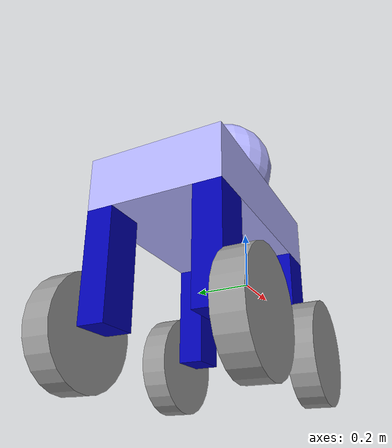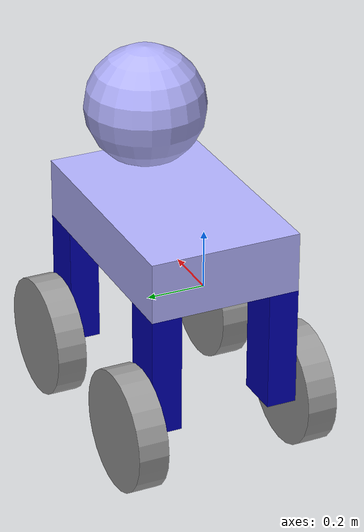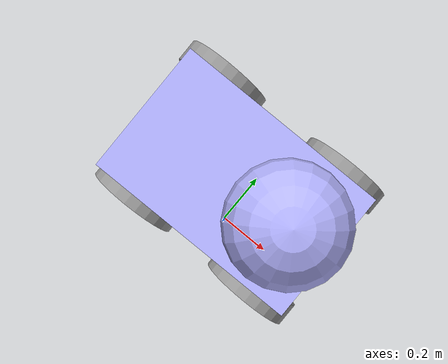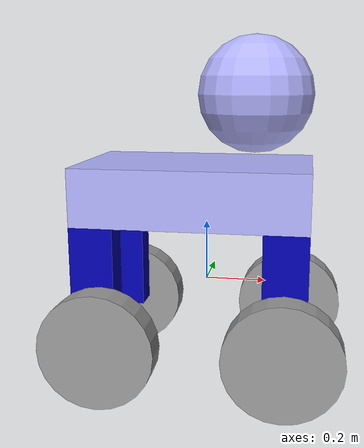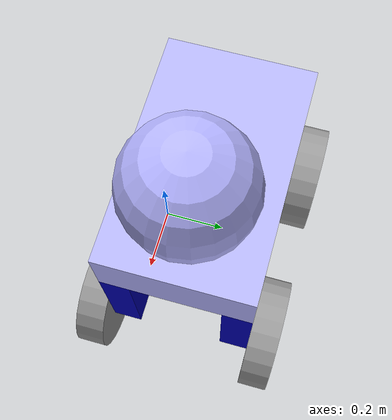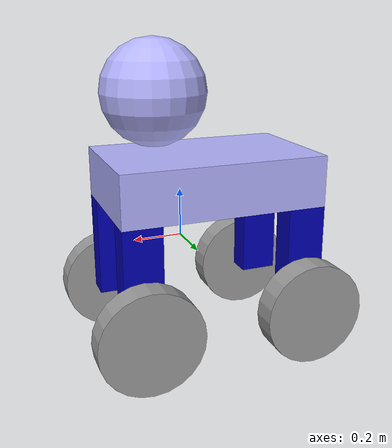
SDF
<?xml version='1.0'?>
<sdf version='1.6'>
  <model name='FourWheeledRobot'>
    <link name='link_4'>
      <pose frame=''>-0.345268 -0.160069 -0.216667 1.5707 -0 0</pose>
      <inertial>
        <mass>1</mass>
        <inertia>
          <ixx>0.145833</ixx>
          <ixy>0</ixy>
          <ixz>0</ixz>
          <iyy>0.145833</iyy>
          <iyz>0</iyz>
          <izz>0.125</izz>
        </inertia>
        <pose frame=''>0 0 0 0 -0 0</pose>
      </inertial>
      <self_collide>0</self_collide>
      <kinematic>0</kinematic>
      <visual name='visual'>
        <pose frame=''>0 0 0 0 -0 0</pose>
        <geometry>
          <cylinder>
            <radius>0.2</radius>
            <length>0.1</length>
          </cylinder>
        </geometry>
        <material>
          <lighting>1</lighting>
          <script>
            <uri>file://media/materials/scripts/gazebo.material</uri>
            <name>Gazebo/Grey</name>
          </script>
          <shader type='pixel'>
            <normal_map>__default__</normal_map>
          </shader>
          <ambient>0 0 0 1</ambient>
          <diffuse>0 0 0 1</diffuse>
          <specular>0 0 0 1</specular>
          <emissive>0 0 0 1</emissive>
        </material>
        <transparency>0</transparency>
        <cast_shadows>1</cast_shadows>
      </visual>
      <collision name='collision'>
        <laser_retro>0</laser_retro>
        <max_contacts>10</max_contacts>
        <pose frame=''>0 0 0 0 -0 0</pose>
        <geometry>
          <cylinder>
            <radius>0.2</radius>
            <length>0.1</length>
          </cylinder>
        </geometry>
        <surface>
          <friction>
            <ode>
              <mu>1</mu>
              <mu2>1</mu2>
              <fdir1>0 0 0</fdir1>
              <slip1>0</slip1>
              <slip2>0</slip2>
            </ode>
            <torsional>
              <coefficient>1</coefficient>
              <patch_radius>0</patch_radius>
              <surface_radius>0</surface_radius>
              <use_patch_radius>1</use_patch_radius>
              <ode>
                <slip>0</slip>
              </ode>
            </torsional>
          </friction>
          <bounce>
            <restitution_coefficient>0</restitution_coefficient>
            <threshold>1e+06</threshold>
          </bounce>
          <contact>
            <collide_without_contact>0</collide_without_contact>
            <collide_without_contact_bitmask>1</collide_without_contact_bitmask>
            <collide_bitmask>1</collide_bitmask>
            <ode>
              <soft_cfm>0</soft_cfm>
              <soft_erp>0.2</soft_erp>
              <kp>1e+13</kp>
              <kd>1</kd>
              <max_vel>0.01</max_vel>
              <min_depth>0</min_depth>
            </ode>
            <bullet>
              <split_impulse>1</split_impulse>
              <split_impulse_penetration_threshold>-0.01</split_impulse_penetration_threshold>
              <soft_cfm>0</soft_cfm>
              <soft_erp>0.2</soft_erp>
              <kp>1e+13</kp>
              <kd>1</kd>
            </bullet>
          </contact>
        </surface>
      </collision>
    </link>
    <link name='link_4_clone'>
      <pose frame=''>0.272232 -0.160069 -0.216668 1.5707 -0 0</pose>
      <inertial>
        <mass>1</mass>
        <inertia>
          <ixx>0.145833</ixx>
          <ixy>0</ixy>
          <ixz>0</ixz>
          <iyy>0.145833</iyy>
          <iyz>0</iyz>
          <izz>0.125</izz>
        </inertia>
        <pose frame=''>0 0 0 0 -0 0</pose>
      </inertial>
      <self_collide>0</self_collide>
      <kinematic>0</kinematic>
      <visual name='visual'>
        <pose frame=''>0 0 0 0 -0 0</pose>
        <geometry>
          <cylinder>
            <radius>0.2</radius>
            <length>0.1</length>
          </cylinder>
        </geometry>
        <material>
          <lighting>1</lighting>
          <script>
            <uri>file://media/materials/scripts/gazebo.material</uri>
            <name>Gazebo/Grey</name>
          </script>
          <shader type='pixel'>
            <normal_map>__default__</normal_map>
          </shader>
          <ambient>0 0 0 1</ambient>
          <diffuse>0 0 0 1</diffuse>
          <specular>0 0 0 1</specular>
          <emissive>0 0 0 1</emissive>
        </material>
        <transparency>0</transparency>
        <cast_shadows>1</cast_shadows>
      </visual>
      <collision name='collision'>
        <laser_retro>0</laser_retro>
        <max_contacts>10</max_contacts>
        <pose frame=''>0 0 0 0 -0 0</pose>
        <geometry>
          <cylinder>
            <radius>0.2</radius>
            <length>0.1</length>
          </cylinder>
        </geometry>
        <surface>
          <friction>
            <ode>
              <mu>1</mu>
              <mu2>1</mu2>
              <fdir1>0 0 0</fdir1>
              <slip1>0</slip1>
              <slip2>0</slip2>
            </ode>
            <torsional>
              <coefficient>1</coefficient>
              <patch_radius>0</patch_radius>
              <surface_radius>0</surface_radius>
              <use_patch_radius>1</use_patch_radius>
              <ode>
                <slip>0</slip>
              </ode>
            </torsional>
          </friction>
          <bounce>
            <restitution_coefficient>0</restitution_coefficient>
            <threshold>1e+06</threshold>
          </bounce>
          <contact>
            <collide_without_contact>0</collide_without_contact>
            <collide_without_contact_bitmask>1</collide_without_contact_bitmask>
            <collide_bitmask>1</collide_bitmask>
            <ode>
              <soft_cfm>0</soft_cfm>
              <soft_erp>0.2</soft_erp>
              <kp>1e+13</kp>
              <kd>1</kd>
              <max_vel>0.01</max_vel>
              <min_depth>0</min_depth>
            </ode>
            <bullet>
              <split_impulse>1</split_impulse>
              <split_impulse_penetration_threshold>-0.01</split_impulse_penetration_threshold>
              <soft_cfm>0</soft_cfm>
              <soft_erp>0.2</soft_erp>
              <kp>1e+13</kp>
              <kd>1</kd>
            </bullet>
          </contact>
        </surface>
      </collision>
    </link>
    <link name='link_4_clone_0'>
      <pose frame=''>-0.377768 0.43997 -0.216667 1.5707 -0 0</pose>
      <inertial>
        <mass>1</mass>
        <inertia>
          <ixx>0.145833</ixx>
          <ixy>0</ixy>
          <ixz>0</ixz>
          <iyy>0.145833</iyy>
          <iyz>0</iyz>
          <izz>0.125</izz>
        </inertia>
        <pose frame=''>0 0 0 0 -0 0</pose>
      </inertial>
      <self_collide>0</self_collide>
      <kinematic>0</kinematic>
      <visual name='visual'>
        <pose frame=''>0 0 0 0 -0 0</pose>
        <geometry>
          <cylinder>
            <radius>0.2</radius>
            <length>0.1</length>
          </cylinder>
        </geometry>
        <material>
          <lighting>1</lighting>
          <script>
            <uri>file://media/materials/scripts/gazebo.material</uri>
            <name>Gazebo/Grey</name>
          </script>
          <shader type='pixel'>
            <normal_map>__default__</normal_map>
          </shader>
          <ambient>0 0 0 1</ambient>
          <diffuse>0 0 0 1</diffuse>
          <specular>0 0 0 1</specular>
          <emissive>0 0 0 1</emissive>
        </material>
        <transparency>0</transparency>
        <cast_shadows>1</cast_shadows>
      </visual>
      <collision name='collision'>
        <laser_retro>0</laser_retro>
        <max_contacts>10</max_contacts>
        <pose frame=''>0 0 0 0 -0 0</pose>
        <geometry>
          <cylinder>
            <radius>0.2</radius>
            <length>0.1</length>
          </cylinder>
        </geometry>
        <surface>
          <friction>
            <ode>
              <mu>1</mu>
              <mu2>1</mu2>
              <fdir1>0 0 0</fdir1>
              <slip1>0</slip1>
              <slip2>0</slip2>
            </ode>
            <torsional>
              <coefficient>1</coefficient>
              <patch_radius>0</patch_radius>
              <surface_radius>0</surface_radius>
              <use_patch_radius>1</use_patch_radius>
              <ode>
                <slip>0</slip>
              </ode>
            </torsional>
          </friction>
          <bounce>
            <restitution_coefficient>0</restitution_coefficient>
            <threshold>1e+06</threshold>
          </bounce>
          <contact>
            <collide_without_contact>0</collide_without_contact>
            <collide_without_contact_bitmask>1</collide_without_contact_bitmask>
            <collide_bitmask>1</collide_bitmask>
            <ode>
              <soft_cfm>0</soft_cfm>
              <soft_erp>0.2</soft_erp>
              <kp>1e+13</kp>
              <kd>1</kd>
              <max_vel>0.01</max_vel>
              <min_depth>0</min_depth>
            </ode>
            <bullet>
              <split_impulse>1</split_impulse>
              <split_impulse_penetration_threshold>-0.01</split_impulse_penetration_threshold>
              <soft_cfm>0</soft_cfm>
              <soft_erp>0.2</soft_erp>
              <kp>1e+13</kp>
              <kd>1</kd>
            </bullet>
          </contact>
        </surface>
      </collision>
    </link>
    <link name='link_4_clone_1'>
      <pose frame=''>0.272232 0.43997 -0.216667 1.5707 -0 0</pose>
      <inertial>
        <mass>1</mass>
        <inertia>
          <ixx>0.145833</ixx>
          <ixy>0</ixy>
          <ixz>0</ixz>
          <iyy>0.145833</iyy>
          <iyz>0</iyz>
          <izz>0.125</izz>
        </inertia>
        <pose frame=''>0 0 0 0 -0 0</pose>
      </inertial>
      <self_collide>0</self_collide>
      <kinematic>0</kinematic>
      <visual name='visual'>
        <pose frame=''>0 0 0 0 -0 0</pose>
        <geometry>
          <cylinder>
            <radius>0.2</radius>
            <length>0.1</length>
          </cylinder>
        </geometry>
        <material>
          <lighting>1</lighting>
          <script>
            <uri>file://media/materials/scripts/gazebo.material</uri>
            <name>Gazebo/Grey</name>
          </script>
          <shader type='pixel'>
            <normal_map>__default__</normal_map>
          </shader>
          <ambient>0 0 0 1</ambient>
          <diffuse>0 0 0 1</diffuse>
          <specular>0 0 0 1</specular>
          <emissive>0 0 0 1</emissive>
        </material>
        <transparency>0</transparency>
        <cast_shadows>1</cast_shadows>
      </visual>
      <collision name='collision'>
        <laser_retro>0</laser_retro>
        <max_contacts>10</max_contacts>
        <pose frame=''>0 0 0 0 -0 0</pose>
        <geometry>
          <cylinder>
            <radius>0.2</radius>
            <length>0.1</length>
          </cylinder>
        </geometry>
        <surface>
          <friction>
            <ode>
              <mu>1</mu>
              <mu2>1</mu2>
              <fdir1>0 0 0</fdir1>
              <slip1>0</slip1>
              <slip2>0</slip2>
            </ode>
            <torsional>
              <coefficient>1</coefficient>
              <patch_radius>0</patch_radius>
              <surface_radius>0</surface_radius>
              <use_patch_radius>1</use_patch_radius>
              <ode>
                <slip>0</slip>
              </ode>
            </torsional>
          </friction>
          <bounce>
            <restitution_coefficient>0</restitution_coefficient>
            <threshold>1e+06</threshold>
          </bounce>
          <contact>
            <collide_without_contact>0</collide_without_contact>
            <collide_without_contact_bitmask>1</collide_without_contact_bitmask>
            <collide_bitmask>1</collide_bitmask>
            <ode>
              <soft_cfm>0</soft_cfm>
              <soft_erp>0.2</soft_erp>
              <kp>1e+13</kp>
              <kd>1</kd>
              <max_vel>0.01</max_vel>
              <min_depth>0</min_depth>
            </ode>
            <bullet>
              <split_impulse>1</split_impulse>
              <split_impulse_penetration_threshold>-0.01</split_impulse_penetration_threshold>
              <soft_cfm>0</soft_cfm>
              <soft_erp>0.2</soft_erp>
              <kp>1e+13</kp>
              <kd>1</kd>
            </bullet>
          </contact>
        </surface>
      </collision>
    </link>
    <link name='link_5'>
      <pose frame=''>-0.377768 -0.060049 -0.016667 0 -0 0</pose>
      <inertial>
        <mass>1</mass>
        <inertia>
          <ixx>0.166667</ixx>
          <ixy>0</ixy>
          <ixz>0</ixz>
          <iyy>0.166667</iyy>
          <iyz>0</iyz>
          <izz>0.166667</izz>
        </inertia>
        <pose frame=''>0 0 0 0 -0 0</pose>
      </inertial>
      <self_collide>0</self_collide>
      <kinematic>0</kinematic>
      <visual name='visual'>
        <pose frame=''>0 0 0 0 -0 0</pose>
        <geometry>
          <box>
            <size>0.15 0.1 0.4</size>
          </box>
        </geometry>
        <material>
          <lighting>1</lighting>
          <script>
            <uri>file://media/materials/scripts/gazebo.material</uri>
            <name>Gazebo/Grey</name>
          </script>
          <shader type='pixel'>
            <normal_map>__default__</normal_map>
          </shader>
          <ambient>0 0 1 1</ambient>
          <diffuse>0 0 0.7 1</diffuse>
          <specular>0 0 0.01 1</specular>
          <emissive>0 0 0 1</emissive>
        </material>
        <transparency>0</transparency>
        <cast_shadows>1</cast_shadows>
      </visual>
      <collision name='collision'>
        <laser_retro>0</laser_retro>
        <max_contacts>10</max_contacts>
        <pose frame=''>0 0 0 0 -0 0</pose>
        <geometry>
          <box>
            <size>0.15 0.1 0.4</size>
          </box>
        </geometry>
        <surface>
          <friction>
            <ode>
              <mu>1</mu>
              <mu2>1</mu2>
              <fdir1>0 0 0</fdir1>
              <slip1>0</slip1>
              <slip2>0</slip2>
            </ode>
            <torsional>
              <coefficient>1</coefficient>
              <patch_radius>0</patch_radius>
              <surface_radius>0</surface_radius>
              <use_patch_radius>1</use_patch_radius>
              <ode>
                <slip>0</slip>
              </ode>
            </torsional>
          </friction>
          <bounce>
            <restitution_coefficient>0</restitution_coefficient>
            <threshold>1e+06</threshold>
          </bounce>
          <contact>
            <collide_without_contact>0</collide_without_contact>
            <collide_without_contact_bitmask>1</collide_without_contact_bitmask>
            <collide_bitmask>1</collide_bitmask>
            <ode>
              <soft_cfm>0</soft_cfm>
              <soft_erp>0.2</soft_erp>
              <kp>1e+13</kp>
              <kd>1</kd>
              <max_vel>0.01</max_vel>
              <min_depth>0</min_depth>
            </ode>
            <bullet>
              <split_impulse>1</split_impulse>
              <split_impulse_penetration_threshold>-0.01</split_impulse_penetration_threshold>
              <soft_cfm>0</soft_cfm>
              <soft_erp>0.2</soft_erp>
              <kp>1e+13</kp>
              <kd>1</kd>
            </bullet>
          </contact>
        </surface>
      </collision>
    </link>
    <link name='link_5_clone'>
      <pose frame=''>-0.377768 0.339951 -0.016667 0 -0 0</pose>
      <inertial>
        <mass>1</mass>
        <inertia>
          <ixx>0.166667</ixx>
          <ixy>0</ixy>
          <ixz>0</ixz>
          <iyy>0.166667</iyy>
          <iyz>0</iyz>
          <izz>0.166667</izz>
        </inertia>
        <pose frame=''>0 0 0 0 -0 0</pose>
      </inertial>
      <self_collide>0</self_collide>
      <kinematic>0</kinematic>
      <visual name='visual'>
        <pose frame=''>0 0 0 0 -0 0</pose>
        <geometry>
          <box>
            <size>0.15 0.1 0.4</size>
          </box>
        </geometry>
        <material>
          <lighting>1</lighting>
          <script>
            <uri>file://media/materials/scripts/gazebo.material</uri>
            <name>Gazebo/Grey</name>
          </script>
          <shader type='pixel'>
            <normal_map>__default__</normal_map>
          </shader>
          <ambient>0 0 1 1</ambient>
          <diffuse>0 0 0.7 1</diffuse>
          <specular>0 0 0.01 1</specular>
          <emissive>0 0 0 1</emissive>
        </material>
        <transparency>0</transparency>
        <cast_shadows>1</cast_shadows>
      </visual>
      <collision name='collision'>
        <laser_retro>0</laser_retro>
        <max_contacts>10</max_contacts>
        <pose frame=''>0 0 0 0 -0 0</pose>
        <geometry>
          <box>
            <size>0.15 0.1 0.4</size>
          </box>
        </geometry>
        <surface>
          <friction>
            <ode>
              <mu>1</mu>
              <mu2>1</mu2>
              <fdir1>0 0 0</fdir1>
              <slip1>0</slip1>
              <slip2>0</slip2>
            </ode>
            <torsional>
              <coefficient>1</coefficient>
              <patch_radius>0</patch_radius>
              <surface_radius>0</surface_radius>
              <use_patch_radius>1</use_patch_radius>
              <ode>
                <slip>0</slip>
              </ode>
            </torsional>
          </friction>
          <bounce>
            <restitution_coefficient>0</restitution_coefficient>
            <threshold>1e+06</threshold>
          </bounce>
          <contact>
            <collide_without_contact>0</collide_without_contact>
            <collide_without_contact_bitmask>1</collide_without_contact_bitmask>
            <collide_bitmask>1</collide_bitmask>
            <ode>
              <soft_cfm>0</soft_cfm>
              <soft_erp>0.2</soft_erp>
              <kp>1e+13</kp>
              <kd>1</kd>
              <max_vel>0.01</max_vel>
              <min_depth>0</min_depth>
            </ode>
            <bullet>
              <split_impulse>1</split_impulse>
              <split_impulse_penetration_threshold>-0.01</split_impulse_penetration_threshold>
              <soft_cfm>0</soft_cfm>
              <soft_erp>0.2</soft_erp>
              <kp>1e+13</kp>
              <kd>1</kd>
            </bullet>
          </contact>
        </surface>
      </collision>
    </link>
    <link name='link_5_clone_0'>
      <pose frame=''>0.272232 -0.060049 -0.016667 0 -0 0</pose>
      <inertial>
        <mass>1</mass>
        <inertia>
          <ixx>0.166667</ixx>
          <ixy>0</ixy>
          <ixz>0</ixz>
          <iyy>0.166667</iyy>
          <iyz>0</iyz>
          <izz>0.166667</izz>
        </inertia>
        <pose frame=''>0 0 0 0 -0 0</pose>
      </inertial>
      <self_collide>0</self_collide>
      <kinematic>0</kinematic>
      <visual name='visual'>
        <pose frame=''>0 0 0 0 -0 0</pose>
        <geometry>
          <box>
            <size>0.15 0.1 0.4</size>
          </box>
        </geometry>
        <material>
          <lighting>1</lighting>
          <script>
            <uri>file://media/materials/scripts/gazebo.material</uri>
            <name>Gazebo/Grey</name>
          </script>
          <shader type='pixel'>
            <normal_map>__default__</normal_map>
          </shader>
          <ambient>0 0 1 1</ambient>
          <diffuse>0 0 0.7 1</diffuse>
          <specular>0 0 0.01 1</specular>
          <emissive>0 0 0 1</emissive>
        </material>
        <transparency>0</transparency>
        <cast_shadows>1</cast_shadows>
      </visual>
      <collision name='collision'>
        <laser_retro>0</laser_retro>
        <max_contacts>10</max_contacts>
        <pose frame=''>0 0 0 0 -0 0</pose>
        <geometry>
          <box>
            <size>0.15 0.1 0.4</size>
          </box>
        </geometry>
        <surface>
          <friction>
            <ode>
              <mu>1</mu>
              <mu2>1</mu2>
              <fdir1>0 0 0</fdir1>
              <slip1>0</slip1>
              <slip2>0</slip2>
            </ode>
            <torsional>
              <coefficient>1</coefficient>
              <patch_radius>0</patch_radius>
              <surface_radius>0</surface_radius>
              <use_patch_radius>1</use_patch_radius>
              <ode>
                <slip>0</slip>
              </ode>
            </torsional>
          </friction>
          <bounce>
            <restitution_coefficient>0</restitution_coefficient>
            <threshold>1e+06</threshold>
          </bounce>
          <contact>
            <collide_without_contact>0</collide_without_contact>
            <collide_without_contact_bitmask>1</collide_without_contact_bitmask>
            <collide_bitmask>1</collide_bitmask>
            <ode>
              <soft_cfm>0</soft_cfm>
              <soft_erp>0.2</soft_erp>
              <kp>1e+13</kp>
              <kd>1</kd>
              <max_vel>0.01</max_vel>
              <min_depth>0</min_depth>
            </ode>
            <bullet>
              <split_impulse>1</split_impulse>
              <split_impulse_penetration_threshold>-0.01</split_impulse_penetration_threshold>
              <soft_cfm>0</soft_cfm>
              <soft_erp>0.2</soft_erp>
              <kp>1e+13</kp>
              <kd>1</kd>
            </bullet>
          </contact>
        </surface>
      </collision>
    </link>
    <link name='link_5_clone_1'>
      <pose frame=''>0.272232 0.339951 -0.016667 0 -0 0</pose>
      <inertial>
        <mass>1</mass>
        <inertia>
          <ixx>0.166667</ixx>
          <ixy>0</ixy>
          <ixz>0</ixz>
          <iyy>0.166667</iyy>
          <iyz>0</iyz>
          <izz>0.166667</izz>
        </inertia>
        <pose frame=''>0 0 0 0 -0 0</pose>
      </inertial>
      <self_collide>0</self_collide>
      <kinematic>0</kinematic>
      <visual name='visual'>
        <pose frame=''>0 0 0 0 -0 0</pose>
        <geometry>
          <box>
            <size>0.15 0.1 0.4</size>
          </box>
        </geometry>
        <material>
          <lighting>1</lighting>
          <script>
            <uri>file://media/materials/scripts/gazebo.material</uri>
            <name>Gazebo/Grey</name>
          </script>
          <shader type='pixel'>
            <normal_map>__default__</normal_map>
          </shader>
          <ambient>0 0 1 1</ambient>
          <diffuse>0 0 0.7 1</diffuse>
          <specular>0 0 0.01 1</specular>
          <emissive>0 0 0 1</emissive>
        </material>
        <transparency>0</transparency>
        <cast_shadows>1</cast_shadows>
      </visual>
      <collision name='collision'>
        <laser_retro>0</laser_retro>
        <max_contacts>10</max_contacts>
        <pose frame=''>0 0 0 0 -0 0</pose>
        <geometry>
          <box>
            <size>0.15 0.1 0.4</size>
          </box>
        </geometry>
        <surface>
          <friction>
            <ode>
              <mu>1</mu>
              <mu2>1</mu2>
              <fdir1>0 0 0</fdir1>
              <slip1>0</slip1>
              <slip2>0</slip2>
            </ode>
            <torsional>
              <coefficient>1</coefficient>
              <patch_radius>0</patch_radius>
              <surface_radius>0</surface_radius>
              <use_patch_radius>1</use_patch_radius>
              <ode>
                <slip>0</slip>
              </ode>
            </torsional>
          </friction>
          <bounce>
            <restitution_coefficient>0</restitution_coefficient>
            <threshold>1e+06</threshold>
          </bounce>
          <contact>
            <collide_without_contact>0</collide_without_contact>
            <collide_without_contact_bitmask>1</collide_without_contact_bitmask>
            <collide_bitmask>1</collide_bitmask>
            <ode>
              <soft_cfm>0</soft_cfm>
              <soft_erp>0.2</soft_erp>
              <kp>1e+13</kp>
              <kd>1</kd>
              <max_vel>0.01</max_vel>
              <min_depth>0</min_depth>
            </ode>
            <bullet>
              <split_impulse>1</split_impulse>
              <split_impulse_penetration_threshold>-0.01</split_impulse_penetration_threshold>
              <soft_cfm>0</soft_cfm>
              <soft_erp>0.2</soft_erp>
              <kp>1e+13</kp>
              <kd>1</kd>
            </bullet>
          </contact>
        </surface>
      </collision>
    </link>
    <link name='link_6'>
      <pose frame=''>-0.052768 0.139951 0.283333 0 -0 0</pose>
      <inertial>
        <mass>1</mass>
        <inertia>
          <ixx>0.166667</ixx>
          <ixy>0</ixy>
          <ixz>0</ixz>
          <iyy>0.166667</iyy>
          <iyz>0</iyz>
          <izz>0.166667</izz>
        </inertia>
        <pose frame=''>0 0 0 0 -0 0</pose>
      </inertial>
      <self_collide>0</self_collide>
      <kinematic>0</kinematic>
      <gravity>1</gravity>
      <visual name='visual'>
        <pose frame=''>0 0 0 0 -0 0</pose>
        <geometry>
          <box>
            <size>0.8 0.5 0.2</size>
          </box>
        </geometry>
        <material>
          <lighting>1</lighting>
          <script>
            <uri>file://media/materials/scripts/gazebo.material</uri>
            <name>Gazebo/Grey</name>
          </script>
          <shader type='pixel'>
            <normal_map>__default__</normal_map>
          </shader>
          <ambient>0.3 0.3 1 1</ambient>
          <diffuse>0.7 0.7 1 1</diffuse>
          <specular>0.01 0.01 0.05 1</specular>
          <emissive>0 0 0 1</emissive>
        </material>
        <transparency>0</transparency>
        <cast_shadows>1</cast_shadows>
      </visual>
      <collision name='collision'>
        <laser_retro>0</laser_retro>
        <max_contacts>10</max_contacts>
        <pose frame=''>0 0 0 0 -0 0</pose>
        <geometry>
          <box>
            <size>0.8 0.5 0.2</size>
          </box>
        </geometry>
        <surface>
          <friction>
            <ode>
              <mu>1</mu>
              <mu2>1</mu2>
              <fdir1>0 0 0</fdir1>
              <slip1>0</slip1>
              <slip2>0</slip2>
            </ode>
            <torsional>
              <coefficient>1</coefficient>
              <patch_radius>0</patch_radius>
              <surface_radius>0</surface_radius>
              <use_patch_radius>1</use_patch_radius>
              <ode>
                <slip>0</slip>
              </ode>
            </torsional>
          </friction>
          <bounce>
            <restitution_coefficient>0</restitution_coefficient>
            <threshold>1e+06</threshold>
          </bounce>
          <contact>
            <collide_without_contact>0</collide_without_contact>
            <collide_without_contact_bitmask>1</collide_without_contact_bitmask>
            <collide_bitmask>1</collide_bitmask>
            <ode>
              <soft_cfm>0</soft_cfm>
              <soft_erp>0.2</soft_erp>
              <kp>1e+13</kp>
              <kd>1</kd>
              <max_vel>0.01</max_vel>
              <min_depth>0</min_depth>
            </ode>
            <bullet>
              <split_impulse>1</split_impulse>
              <split_impulse_penetration_threshold>-0.01</split_impulse_penetration_threshold>
              <soft_cfm>0</soft_cfm>
              <soft_erp>0.2</soft_erp>
              <kp>1e+13</kp>
              <kd>1</kd>
            </bullet>
          </contact>
        </surface>
      </collision>
    </link>
    <link name='link_7'>
      <pose frame=''>0.147232 0.139951 0.618344 0 -0 0</pose>
      <inertial>
        <mass>1</mass>
        <inertia>
          <ixx>0.1</ixx>
          <ixy>0</ixy>
          <ixz>0</ixz>
          <iyy>0.1</iyy>
          <iyz>0</iyz>
          <izz>0.1</izz>
        </inertia>
        <pose frame=''>0 0 0 0 -0 0</pose>
      </inertial>
      <gravity>1</gravity>
      <self_collide>0</self_collide>
      <kinematic>0</kinematic>
      <visual name='visual'>
        <pose frame=''>0 0 0 0 -0 0</pose>
        <geometry>
          <sphere>
            <radius>0.2</radius>
          </sphere>
        </geometry>
        <material>
          <lighting>1</lighting>
          <script>
            <uri>file://media/materials/scripts/gazebo.material</uri>
            <name>Gazebo/Grey</name>
          </script>
          <shader type='pixel'>
            <normal_map>__default__</normal_map>
          </shader>
          <ambient>0.3 0.3 1 1</ambient>
          <diffuse>0.7 0.7 1 1</diffuse>
          <specular>0.01 0.01 0.05 1</specular>
          <emissive>0 0 0 1</emissive>
        </material>
        <transparency>0</transparency>
        <cast_shadows>1</cast_shadows>
      </visual>
      <collision name='collision'>
        <laser_retro>0</laser_retro>
        <max_contacts>10</max_contacts>
        <pose frame=''>0 0 0 0 -0 0</pose>
        <geometry>
          <sphere>
            <radius>0.2</radius>
          </sphere>
        </geometry>
        <surface>
          <friction>
            <ode>
              <mu>1</mu>
              <mu2>1</mu2>
              <fdir1>0 0 0</fdir1>
              <slip1>0</slip1>
              <slip2>0</slip2>
            </ode>
            <torsional>
              <coefficient>1</coefficient>
              <patch_radius>0</patch_radius>
              <surface_radius>0</surface_radius>
              <use_patch_radius>1</use_patch_radius>
              <ode>
                <slip>0</slip>
              </ode>
            </torsional>
          </friction>
          <bounce>
            <restitution_coefficient>0</restitution_coefficient>
            <threshold>1e+06</threshold>
          </bounce>
          <contact>
            <collide_without_contact>0</collide_without_contact>
            <collide_without_contact_bitmask>1</collide_without_contact_bitmask>
            <collide_bitmask>1</collide_bitmask>
            <ode>
              <soft_cfm>0</soft_cfm>
              <soft_erp>0.2</soft_erp>
              <kp>1e+13</kp>
              <kd>1</kd>
              <max_vel>0.01</max_vel>
              <min_depth>0</min_depth>
            </ode>
            <bullet>
              <split_impulse>1</split_impulse>
              <split_impulse_penetration_threshold>-0.01</split_impulse_penetration_threshold>
              <soft_cfm>0</soft_cfm>
              <soft_erp>0.2</soft_erp>
              <kp>1e+13</kp>
              <kd>1</kd>
            </bullet>
          </contact>
        </surface>
      </collision>
    </link>
    <joint name='link_5_JOINT_1' type='revolute'>
      <parent>link_5</parent>
      <child>link_4</child>
      <pose frame=''>0 0 0 0 -0 0</pose>
      <axis>
        <xyz>0 0 1</xyz>
        <use_parent_model_frame>0</use_parent_model_frame>
        <limit>
          <lower>-1.79769e+308</lower>
          <upper>1.79769e+308</upper>
          <effort>-1</effort>
          <velocity>-1</velocity>
        </limit>
        <dynamics>
          <spring_reference>0</spring_reference>
          <spring_stiffness>0</spring_stiffness>
          <damping>0</damping>
          <friction>0</friction>
        </dynamics>
      </axis>
      <physics>
        <ode>
          <limit>
            <cfm>0</cfm>
            <erp>0.2</erp>
          </limit>
          <suspension>
            <cfm>0</cfm>
            <erp>0.2</erp>
          </suspension>
        </ode>
      </physics>
    </joint>
    <joint name='link_5_clone_0_JOINT_7' type='revolute'>
      <parent>link_5_clone_0</parent>
      <child>link_4_clone</child>
      <pose frame=''>0 0 0 0 -0 0</pose>
      <axis>
        <xyz>0 0 1</xyz>
        <use_parent_model_frame>0</use_parent_model_frame>
        <limit>
          <lower>-1.79769e+308</lower>
          <upper>1.79769e+308</upper>
          <effort>-1</effort>
          <velocity>-1</velocity>
        </limit>
        <dynamics>
          <spring_reference>0</spring_reference>
          <spring_stiffness>0</spring_stiffness>
          <damping>0</damping>
          <friction>0</friction>
        </dynamics>
      </axis>
      <physics>
        <ode>
          <limit>
            <cfm>0</cfm>
            <erp>0.2</erp>
          </limit>
          <suspension>
            <cfm>0</cfm>
            <erp>0.2</erp>
          </suspension>
        </ode>
      </physics>
    </joint>
    <joint name='link_5_clone_1_JOINT_9' type='revolute'>
      <parent>link_5_clone_1</parent>
      <child>link_4_clone_1</child>
      <pose frame=''>0 0 0 0 -0 0</pose>
      <axis>
        <xyz>0 0 1</xyz>
        <use_parent_model_frame>0</use_parent_model_frame>
        <limit>
          <lower>-1.79769e+308</lower>
          <upper>1.79769e+308</upper>
          <effort>-1</effort>
          <velocity>-1</velocity>
        </limit>
        <dynamics>
          <spring_reference>0</spring_reference>
          <spring_stiffness>0</spring_stiffness>
          <damping>0</damping>
          <friction>0</friction>
        </dynamics>
      </axis>
      <physics>
        <ode>
          <limit>
            <cfm>0</cfm>
            <erp>0.2</erp>
          </limit>
          <suspension>
            <cfm>0</cfm>
            <erp>0.2</erp>
          </suspension>
        </ode>
      </physics>
    </joint>
    <joint name='link_5_clone_JOINT_8' type='revolute'>
      <parent>link_5_clone</parent>
      <child>link_4_clone_0</child>
      <pose frame=''>0 0 0 0 -0 0</pose>
      <axis>
        <xyz>0 0 1</xyz>
        <use_parent_model_frame>0</use_parent_model_frame>
        <limit>
          <lower>-1.79769e+308</lower>
          <upper>1.79769e+308</upper>
          <effort>-1</effort>
          <velocity>-1</velocity>
        </limit>
        <dynamics>
          <spring_reference>0</spring_reference>
          <spring_stiffness>0</spring_stiffness>
          <damping>0</damping>
          <friction>0</friction>
        </dynamics>
      </axis>
      <physics>
        <ode>
          <limit>
            <cfm>0</cfm>
            <erp>0.2</erp>
          </limit>
          <suspension>
            <cfm>0</cfm>
            <erp>0.2</erp>
          </suspension>
        </ode>
      </physics>
    </joint>
    <joint name='link_6_JOINT_3' type='fixed'>
      <parent>link_6</parent>
      <child>link_5</child>
      <pose frame=''>0 0 0 0 -0 0</pose>
      <physics>
        <ode>
          <limit>
            <cfm>0</cfm>
            <erp>0.2</erp>
          </limit>
          <suspension>
            <cfm>0</cfm>
            <erp>0.2</erp>
          </suspension>
        </ode>
      </physics>
    </joint>
    <joint name='link_6_JOINT_4' type='fixed'>
      <parent>link_6</parent>
      <child>link_5_clone</child>
      <pose frame=''>0 0 0 0 -0 0</pose>
      <physics>
        <ode>
          <limit>
            <cfm>0</cfm>
            <erp>0.2</erp>
          </limit>
          <suspension>
            <cfm>0</cfm>
            <erp>0.2</erp>
          </suspension>
        </ode>
      </physics>
    </joint>
    <joint name='link_6_JOINT_5' type='fixed'>
      <parent>link_6</parent>
      <child>link_5_clone_0</child>
      <pose frame=''>0 0 0 0 -0 0</pose>
      <physics>
        <ode>
          <limit>
            <cfm>0</cfm>
            <erp>0.2</erp>
          </limit>
          <suspension>
            <cfm>0</cfm>
            <erp>0.2</erp>
          </suspension>
        </ode>
      </physics>
    </joint>
    <joint name='link_6_JOINT_6' type='fixed'>
      <parent>link_6</parent>
      <child>link_5_clone_1</child>
      <pose frame=''>0 0 0 0 -0 0</pose>
      <physics>
        <ode>
          <limit>
            <cfm>0</cfm>
            <erp>0.2</erp>
          </limit>
          <suspension>
            <cfm>0</cfm>
            <erp>0.2</erp>
          </suspension>
        </ode>
      </physics>
    </joint>
    <joint name='link_7_JOINT_15' type='fixed'>
      <parent>link_7</parent>
      <child>link_6</child>
      <pose frame=''>0 0 0 0 -0 0</pose>
      <physics>
        <ode>
          <limit>
            <cfm>0</cfm>
            <erp>0.2</erp>
          </limit>
          <suspension>
            <cfm>0</cfm>
            <erp>0.2</erp>
          </suspension>
        </ode>
      </physics>
    </joint>
    <static>0</static>
    <allow_auto_disable>1</allow_auto_disable>
  </model>
</sdf>
